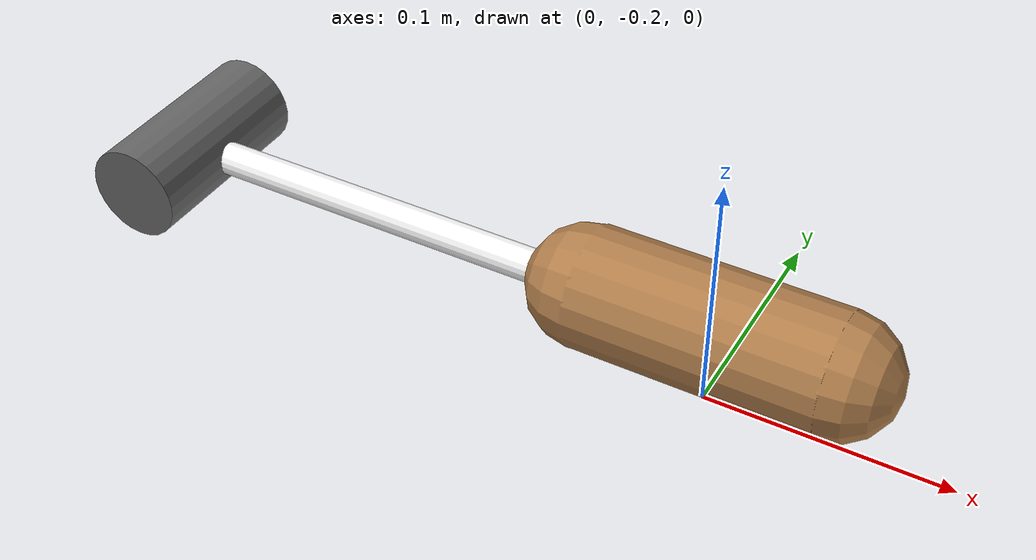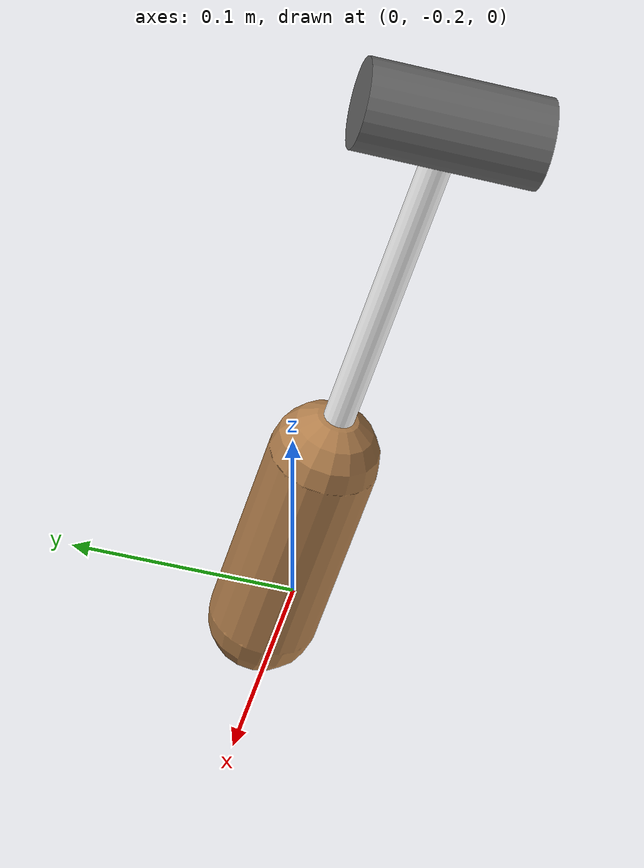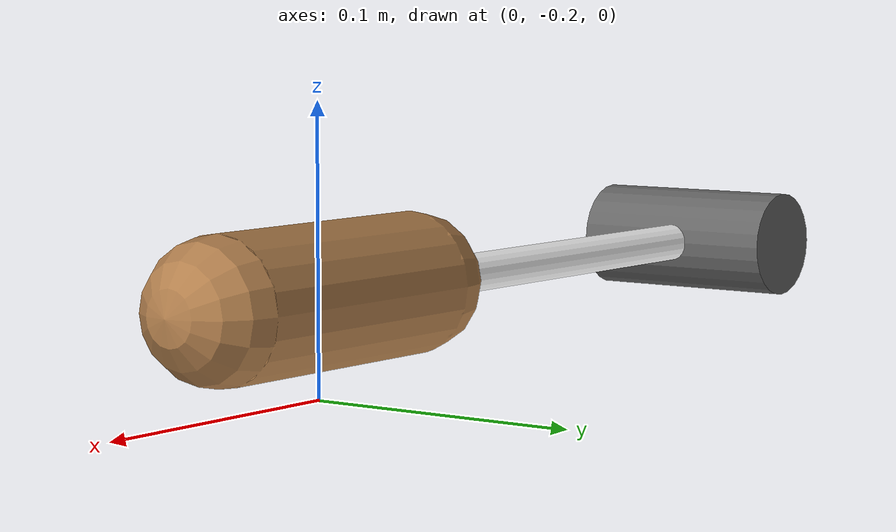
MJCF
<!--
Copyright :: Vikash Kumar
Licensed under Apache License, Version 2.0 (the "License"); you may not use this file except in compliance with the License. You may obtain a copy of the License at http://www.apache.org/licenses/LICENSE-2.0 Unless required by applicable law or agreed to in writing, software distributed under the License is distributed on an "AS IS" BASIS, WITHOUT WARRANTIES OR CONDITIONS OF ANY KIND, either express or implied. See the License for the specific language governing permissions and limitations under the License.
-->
<mujoco model="dapghammer">
    <include file='../common.xml'/>

    <asset>
        <texture type="cube" name="wood" file="../textures/wood.png" />
        <material name="MatWood" texture="wood" texrepeat="3 3" specular="0.4" shininess="0.1" />
    </asset>

    <worldbody>
        <body name="object" pos="0 -0.2 0.035" quat="0.707388 0.706825 0 0">
            <inertial pos="-0.11025 0 0" quat="0.50001 0.49999 0.49999 0.50001" mass="0.253442" diaginertia="0.00349644 0.00345287 8.947e-05" />
            <joint name="OBJTx" pos="0 0 0" axis="1 0 0" type="slide" limited="false" damping="0" />
            <joint name="OBJTy" pos="0 0 0" axis="0 1 0" type="slide" limited="false" damping="0" />
            <joint name="OBJTz" pos="0 0 0" axis="0 0 1" type="slide" limited="false" damping="0" />
            <joint name="OBJRx" pos="0 0 0" axis="1 0 0" limited="false" damping="0.1" />
            <joint name="OBJRy" pos="0 0 0" axis="0 1 0" limited="false" damping="0.1" />
            <joint name="OBJRz" pos="0 0 0" axis="0 0 1" limited="false" damping="0.1" />
            <geom name="handle" size="0.025 0.05" quat="0.707388 0 0.706825 0" type="capsule" condim="4" material="MatWood" />
            <geom name="neck" size="0.007 0.085" pos="-0.14 0 0" quat="0.707388 0 0.706825 0" type="capsule" condim="4" rgba="1 1 1 1" />
            <geom name="head" size="0.02 0.04" pos="-0.24 0 0" type="cylinder" condim="4" rgba="0.4 0.4 0.4 1" />
            <site name="tool" pos="-0.2 0 -0.04" size="0.01" group="4" rgba="0.4 0.8 0.4 1" />
            <body name="mid_point" pos="-0.12 0 0"> <geom name="mid_point" contype="0" conaffinity="0" rgba="1 0 0 0" size=".03" type="sphere"/></body>
        </body>
    </worldbody>
</mujoco>

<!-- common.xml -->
<mujoco>
    <compiler angle="radian" />

    <asset>
        <material name="MatObject" specular="0.75" shininess="0.1" reflectance="0.5" rgba="0.9 0.7 0.5 1" />
    </asset>

    <default>
        <joint limited="true" margin="0.01" armature="0.001" damping="0.05" frictionloss="0.001" />
        <geom friction="1 0.5 0.01" margin="0.0005" density="1250" />
        <site size="0.005 0 0" rgba="0.4 0.9 0.4 1" />
        <general ctrllimited="true" ctrlrange="-1 1" />
        <tendon limited="true" />

        <default class="object_visual">
            <geom type="mesh" contype="0" conaffinity="0" mass="0" group="1" material="MatObject" />
        </default>

        <default class="object_contact">
            <geom type="mesh" density="1250" condim="4" rgba="0 1 0 0" />
        </default>

        <default class="freejoint">
            <joint limited="false" damping="0"/>
        </default>
    </default>

    <visual>
        <!-- free camera attributes -->
        <global fovy="25" />
    </visual>
</mujoco>
